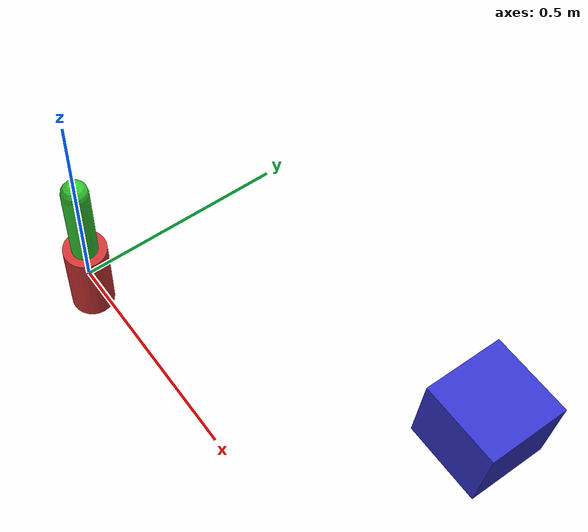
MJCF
<mujoco model="gravcomp_scene_test">
  <compiler angle="radian"/>
  <option timestep="0.002" solver="Newton" iterations="20"/>

  <worldbody>
    <!-- Robot arm: two hinge joints — gravcomp toggles with control mode. -->
    <body name="link1" pos="0 0 0">
      <joint name="j1" type="hinge" axis="0 0 1" range="-3.14 3.14"/>
      <inertial pos="0 0 0.1" mass="1.0" diaginertia="0.01 0.01 0.01"/>
      <geom type="cylinder" size="0.05 0.1" rgba="0.8 0.2 0.2 1"/>
      <body name="link2" pos="0 0 0.2">
        <joint name="j2" type="hinge" axis="0 1 0" range="-1.57 1.57"/>
        <inertial pos="0 0 0.1" mass="0.5" diaginertia="0.005 0.005 0.005"/>
        <geom type="capsule" size="0.03 0.1" rgba="0.2 0.8 0.2 1"/>
      </body>
    </body>

    <body name="free_object" pos="1.0 0 1.0">
      <freejoint name="free_object_root"/>
      <inertial pos="0 0 0" mass="0.1" diaginertia="0.0001 0.0001 0.0001"/>
      <geom type="box" size="0.05 0.05 0.05" rgba="0.2 0.2 0.8 1"/>
    </body>
  </worldbody>

  <actuator>
    <motor name="m1" joint="j1" ctrlrange="-10 10"/>
    <position name="m2" joint="j2" kp="100" ctrlrange="-1.57 1.57"/>
  </actuator>
</mujoco>
